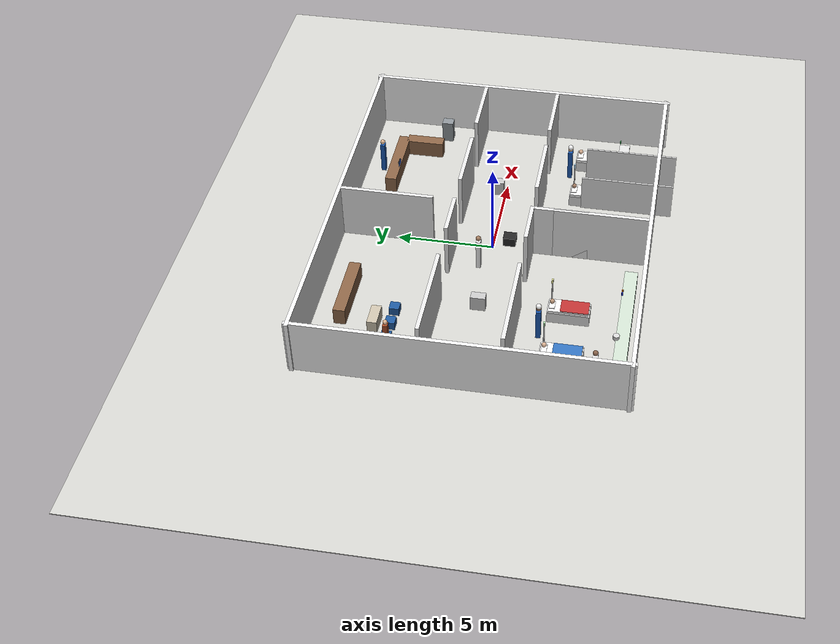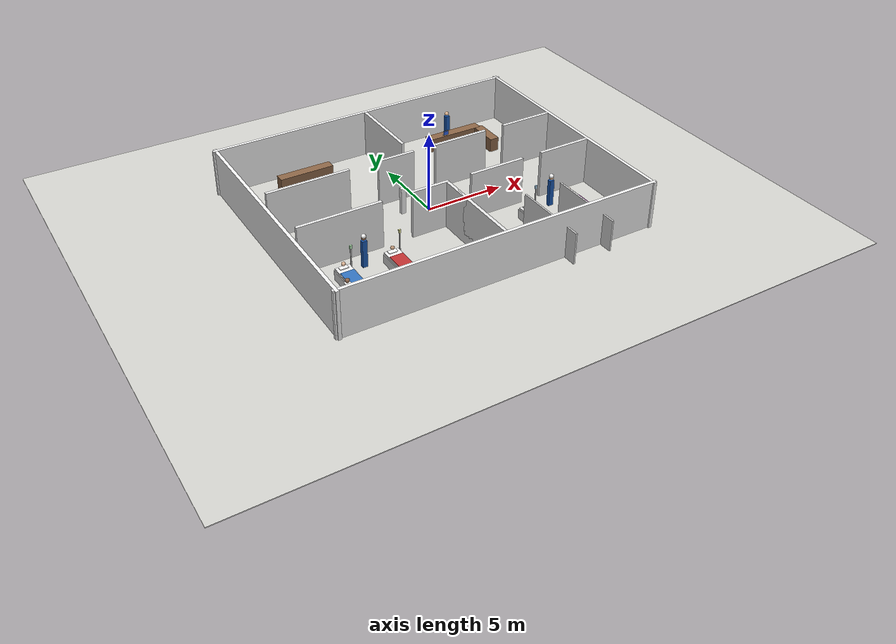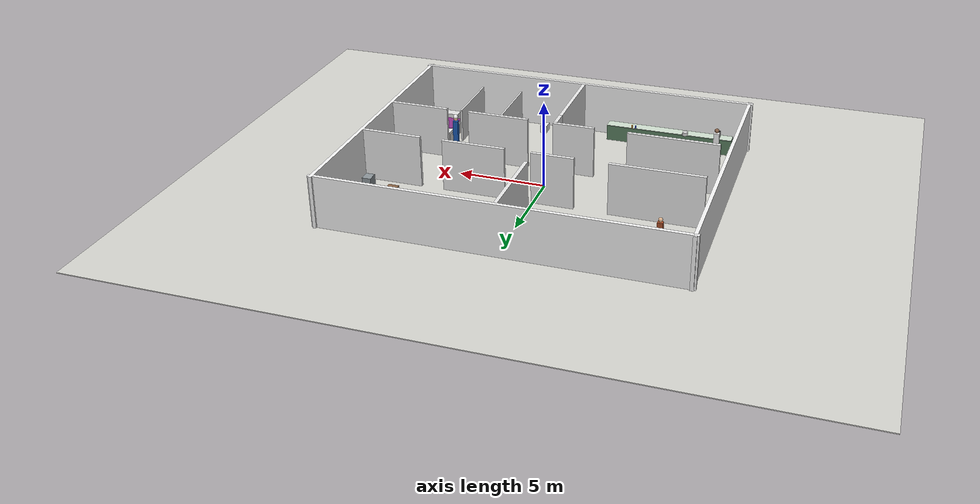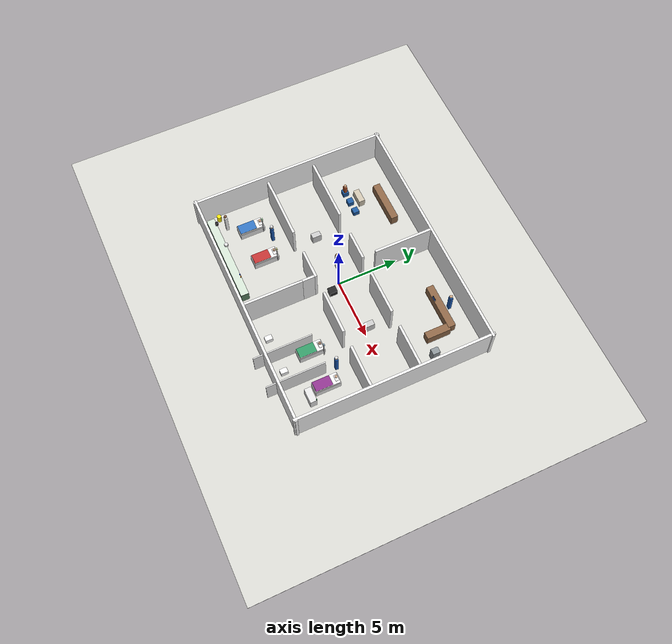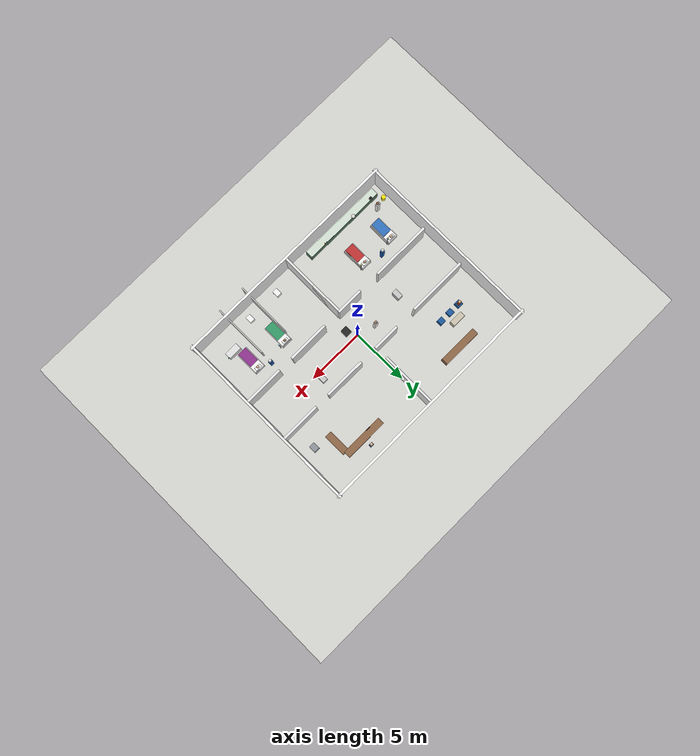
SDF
<?xml version="1.0"?>
<sdf version="1.8">
  <world name="hospital">

    <physics name="1ms" type="ignored">
      <max_step_size>0.001</max_step_size>
      <real_time_factor>1.0</real_time_factor>
    </physics>

    <plugin filename="gz-sim-physics-system"       name="gz::sim::systems::Physics"/>
    <plugin filename="gz-sim-user-commands-system" name="gz::sim::systems::UserCommands"/>
    <plugin filename="gz-sim-scene-broadcaster-system" name="gz::sim::systems::SceneBroadcaster"/>
    <plugin filename="gz-sim-sensors-system"       name="gz::sim::systems::Sensors">
      <render_engine>ogre2</render_engine>
    </plugin>
    <plugin filename="gz-sim-contact-system" name="gz::sim::systems::Contact"/>

    <light name="overhead_main" type="directional">
      <cast_shadows>true</cast_shadows>
      <pose>0 0 10 0 0 0</pose>
      <diffuse>0.95 0.95 0.98 1</diffuse>
      <specular>0.3 0.3 0.3 1</specular>
      <direction>-0.2 0.2 -1</direction>
      <attenuation><range>1000</range><constant>0.9</constant>
        <linear>0.01</linear><quadratic>0.001</quadratic></attenuation>
    </light>
    <light name="fill" type="directional">
      <pose>0 0 8 0 0 0</pose>
      <diffuse>0.5 0.5 0.55 1</diffuse>
      <specular>0.1 0.1 0.1 1</specular>
      <direction>0.3 -0.2 -1</direction>
      <cast_shadows>false</cast_shadows>
    </light>

    <!-- FLOOR -->
    <model name="floor"><static>true</static>
      <pose>0 0 -0.025 0 0 0</pose>
      <link name="link">
        <collision name="c">
          <geometry><box><size>40 32 0.05</size></box></geometry>
          <surface>
            <friction><ode><mu>1.0</mu><mu2>1.0</mu2></ode></friction>
            <contact><ode><kp>1000000.0</kp><kd>1.0</kd></ode></contact>
          </surface>
        </collision>
        <visual name="v">
          <geometry><box><size>40 32 0.05</size></box></geometry>
          <material><ambient>0.83 0.83 0.81 1</ambient><diffuse>0.83 0.83 0.81 1</diffuse></material>
        </visual>
      </link>
    </model>

    <!-- OUTER WALLS -->
    <model name="wall_north"><static>true</static><pose>0 8 1.5 0 0 0</pose>
      <link name="l"><collision name="c"><geometry><box><size>20.4 0.2 3.0</size></box></geometry></collision>
      <visual name="v"><geometry><box><size>20.4 0.2 3.0</size></box></geometry>
      <material><ambient>0.96 0.96 0.96 1</ambient><diffuse>0.96 0.96 0.96 1</diffuse></material></visual></link></model>

    <model name="wall_south"><static>true</static><pose>0 -8 1.5 0 0 0</pose>
      <link name="l"><collision name="c"><geometry><box><size>20.4 0.2 3.0</size></box></geometry></collision>
      <visual name="v"><geometry><box><size>20.4 0.2 3.0</size></box></geometry>
      <material><ambient>0.96 0.96 0.96 1</ambient><diffuse>0.96 0.96 0.96 1</diffuse></material></visual></link></model>

    <model name="wall_west"><static>true</static><pose>-10 0 1.5 0 0 0</pose>
      <link name="l"><collision name="c"><geometry><box><size>0.2 16.4 3.0</size></box></geometry></collision>
      <visual name="v"><geometry><box><size>0.2 16.4 3.0</size></box></geometry>
      <material><ambient>0.96 0.96 0.96 1</ambient><diffuse>0.96 0.96 0.96 1</diffuse></material></visual></link></model>

    <model name="wall_east"><static>true</static><pose>10 0 1.5 0 0 0</pose>
      <link name="l"><collision name="c"><geometry><box><size>0.2 16.4 3.0</size></box></geometry></collision>
      <visual name="v"><geometry><box><size>0.2 16.4 3.0</size></box></geometry>
      <material><ambient>0.96 0.96 0.96 1</ambient><diffuse>0.96 0.96 0.96 1</diffuse></material></visual></link></model>

    <!-- NORTH CORRIDOR WALL (Y=+2) with two doorway gaps -->
    <model name="ncw1"><static>true</static><pose>-6.8 2.0 1.5 0 0 0</pose>
      <link name="l"><collision name="c"><geometry><box><size>5.2 0.2 3.0</size></box></geometry></collision>
      <visual name="v"><geometry><box><size>5.2 0.2 3.0</size></box></geometry>
      <material><ambient>0.91 0.91 0.91 1</ambient><diffuse>0.91 0.91 0.91 1</diffuse></material></visual></link></model>
    <model name="ncw2"><static>true</static><pose>-1.1 2.0 1.5 0 0 0</pose>
      <link name="l"><collision name="c"><geometry><box><size>2.4 0.2 3.0</size></box></geometry></collision>
      <visual name="v"><geometry><box><size>2.4 0.2 3.0</size></box></geometry>
      <material><ambient>0.91 0.91 0.91 1</ambient><diffuse>0.91 0.91 0.91 1</diffuse></material></visual></link></model>
    <model name="ncw3"><static>true</static><pose>3.4 2.0 1.5 0 0 0</pose>
      <link name="l"><collision name="c"><geometry><box><size>3.6 0.2 3.0</size></box></geometry></collision>
      <visual name="v"><geometry><box><size>3.6 0.2 3.0</size></box></geometry>
      <material><ambient>0.91 0.91 0.91 1</ambient><diffuse>0.91 0.91 0.91 1</diffuse></material></visual></link></model>
    <model name="ncw4"><static>true</static><pose>8.2 2.0 1.5 0 0 0</pose>
      <link name="l"><collision name="c"><geometry><box><size>3.4 0.2 3.0</size></box></geometry></collision>
      <visual name="v"><geometry><box><size>3.4 0.2 3.0</size></box></geometry>
      <material><ambient>0.91 0.91 0.91 1</ambient><diffuse>0.91 0.91 0.91 1</diffuse></material></visual></link></model>

    <!-- SOUTH CORRIDOR WALL (Y=-2) with two doorway gaps -->
    <model name="scw1"><static>true</static><pose>-6.8 -2.0 1.5 0 0 0</pose>
      <link name="l"><collision name="c"><geometry><box><size>5.2 0.2 3.0</size></box></geometry></collision>
      <visual name="v"><geometry><box><size>5.2 0.2 3.0</size></box></geometry>
      <material><ambient>0.91 0.91 0.91 1</ambient><diffuse>0.91 0.91 0.91 1</diffuse></material></visual></link></model>
    <model name="scw2"><static>true</static><pose>-1.1 -2.0 1.5 0 0 0</pose>
      <link name="l"><collision name="c"><geometry><box><size>2.4 0.2 3.0</size></box></geometry></collision>
      <visual name="v"><geometry><box><size>2.4 0.2 3.0</size></box></geometry>
      <material><ambient>0.91 0.91 0.91 1</ambient><diffuse>0.91 0.91 0.91 1</diffuse></material></visual></link></model>
    <model name="scw3"><static>true</static><pose>3.4 -2.0 1.5 0 0 0</pose>
      <link name="l"><collision name="c"><geometry><box><size>3.6 0.2 3.0</size></box></geometry></collision>
      <visual name="v"><geometry><box><size>3.6 0.2 3.0</size></box></geometry>
      <material><ambient>0.91 0.91 0.91 1</ambient><diffuse>0.91 0.91 0.91 1</diffuse></material></visual></link></model>
    <model name="scw4"><static>true</static><pose>8.2 -2.0 1.5 0 0 0</pose>
      <link name="l"><collision name="c"><geometry><box><size>3.4 0.2 3.0</size></box></geometry></collision>
      <visual name="v"><geometry><box><size>3.4 0.2 3.0</size></box></geometry>
      <material><ambient>0.91 0.91 0.91 1</ambient><diffuse>0.91 0.91 0.91 1</diffuse></material></visual></link></model>

    <!-- CENTRE VERTICAL WALL (X=0) north and south halves -->
    <model name="cwall_n"><static>true</static><pose>0 5.5 1.5 0 0 0</pose>
      <link name="l"><collision name="c"><geometry><box><size>0.2 4.8 3.0</size></box></geometry></collision>
      <visual name="v"><geometry><box><size>0.2 4.8 3.0</size></box></geometry>
      <material><ambient>0.91 0.91 0.91 1</ambient><diffuse>0.91 0.91 0.91 1</diffuse></material></visual></link></model>
    <model name="cwall_s"><static>true</static><pose>0 -5.5 1.5 0 0 0</pose>
      <link name="l"><collision name="c"><geometry><box><size>0.2 4.8 3.0</size></box></geometry></collision>
      <visual name="v"><geometry><box><size>0.2 4.8 3.0</size></box></geometry>
      <material><ambient>0.91 0.91 0.91 1</ambient><diffuse>0.91 0.91 0.91 1</diffuse></material></visual></link></model>
    <model name="ward_div"><static>true</static><pose>0 -3.5 1.5 0 0 0</pose>
      <link name="l"><collision name="c"><geometry><box><size>0.2 2.8 3.0</size></box></geometry></collision>
      <visual name="v"><geometry><box><size>0.2 2.8 3.0</size></box></geometry>
      <material><ambient>0.91 0.91 0.91 1</ambient><diffuse>0.91 0.91 0.91 1</diffuse></material></visual></link></model>

    <!-- ═══ ENTRANCE LOBBY (west, north of corridor) ═══ -->
    <model name="info_counter"><static>true</static><pose>-5.0 6.5 0.45 0 0 0</pose>
      <link name="l"><collision name="c"><geometry><box><size>3.5 0.6 0.9</size></box></geometry></collision>
      <visual name="v"><geometry><box><size>3.5 0.6 0.9</size></box></geometry>
      <material><ambient>0.55 0.40 0.28 1</ambient><diffuse>0.55 0.40 0.28 1</diffuse></material></visual></link></model>
    <model name="wait_chair_a"><static>true</static><pose>-7.5 4.0 0.22 0 0 0</pose>
      <link name="l"><collision name="c"><geometry><box><size>0.5 0.5 0.44</size></box></geometry></collision>
      <visual name="v"><geometry><box><size>0.5 0.5 0.44</size></box></geometry>
      <material><ambient>0.12 0.35 0.62 1</ambient><diffuse>0.12 0.35 0.62 1</diffuse></material></visual></link></model>
    <model name="wait_chair_b"><static>true</static><pose>-6.5 4.0 0.22 0 0 0</pose>
      <link name="l"><collision name="c"><geometry><box><size>0.5 0.5 0.44</size></box></geometry></collision>
      <visual name="v"><geometry><box><size>0.5 0.5 0.44</size></box></geometry>
      <material><ambient>0.12 0.35 0.62 1</ambient><diffuse>0.12 0.35 0.62 1</diffuse></material></visual></link></model>
    <model name="wait_chair_c"><static>true</static><pose>-5.5 4.0 0.22 0 0 0</pose>
      <link name="l"><collision name="c"><geometry><box><size>0.5 0.5 0.44</size></box></geometry></collision>
      <visual name="v"><geometry><box><size>0.5 0.5 0.44</size></box></geometry>
      <material><ambient>0.12 0.35 0.62 1</ambient><diffuse>0.12 0.35 0.62 1</diffuse></material></visual></link></model>
    <model name="wait_table"><static>true</static><pose>-6.5 4.8 0.35 0 0 0</pose>
      <link name="l"><collision name="c"><geometry><box><size>1.2 0.5 0.70</size></box></geometry></collision>
      <visual name="v"><geometry><box><size>1.2 0.5 0.70</size></box></geometry>
      <material><ambient>0.80 0.76 0.68 1</ambient><diffuse>0.80 0.76 0.68 1</diffuse></material></visual></link></model>

    <!-- ═══ RECEPTION (east, north of corridor) ═══ -->
    <model name="recept_desk"><static>true</static><pose>5.5 6.2 0.45 0 0 0</pose>
      <link name="l"><collision name="c"><geometry><box><size>3.8 0.6 0.9</size></box></geometry></collision>
      <visual name="v"><geometry><box><size>3.8 0.6 0.9</size></box></geometry>
      <material><ambient>0.55 0.40 0.28 1</ambient><diffuse>0.55 0.40 0.28 1</diffuse></material></visual></link></model>
    <model name="recept_side"><static>true</static><pose>7.3 5.0 0.45 0 0 0</pose>
      <link name="l"><collision name="c"><geometry><box><size>0.6 2.0 0.9</size></box></geometry></collision>
      <visual name="v"><geometry><box><size>0.6 2.0 0.9</size></box></geometry>
      <material><ambient>0.55 0.40 0.28 1</ambient><diffuse>0.55 0.40 0.28 1</diffuse></material></visual></link></model>
    <model name="recept_monitor"><static>true</static><pose>4.8 5.95 1.1 0 0 0</pose>
      <link name="l"><collision name="c"><geometry><box><size>0.4 0.05 0.3</size></box></geometry></collision>
      <visual name="v"><geometry><box><size>0.4 0.05 0.3</size></box></geometry>
      <material><ambient>0.08 0.08 0.08 1</ambient><diffuse>0.08 0.08 0.08 1</diffuse></material></visual></link></model>
    <model name="recept_screen"><static>true</static><pose>4.8 5.92 1.1 0 0 0</pose>
      <link name="l"><collision name="c"><geometry><box><size>0.36 0.01 0.26</size></box></geometry></collision>
      <visual name="v"><geometry><box><size>0.36 0.01 0.26</size></box></geometry>
      <material><ambient>0.2 0.4 0.9 1</ambient><diffuse>0.2 0.4 0.9 1</diffuse></material></visual></link></model>
    <model name="filing_cab"><static>true</static><pose>8.8 4.0 0.6 0 0 0</pose>
      <link name="l"><collision name="c"><geometry><box><size>0.5 0.6 1.2</size></box></geometry></collision>
      <visual name="v"><geometry><box><size>0.5 0.6 1.2</size></box></geometry>
      <material><ambient>0.55 0.58 0.60 1</ambient><diffuse>0.55 0.58 0.60 1</diffuse></material></visual></link></model>

    <!-- ═══ CORRIDOR furniture ═══ -->
    <model name="trolley_w"><static>true</static><pose>-4.5 0.0 0.4 0 0 0</pose>
      <link name="l"><collision name="c"><geometry><box><size>0.45 0.75 0.80</size></box></geometry></collision>
      <visual name="v"><geometry><box><size>0.45 0.75 0.80</size></box></geometry>
      <material><ambient>0.78 0.78 0.78 1</ambient><diffuse>0.78 0.78 0.78 1</diffuse></material></visual></link></model>
    <model name="trolley_e"><static>true</static><pose>4.5 0.5 0.4 0 0 0</pose>
      <link name="l"><collision name="c"><geometry><box><size>0.45 0.75 0.80</size></box></geometry></collision>
      <visual name="v"><geometry><box><size>0.45 0.75 0.80</size></box></geometry>
      <material><ambient>0.78 0.78 0.78 1</ambient><diffuse>0.78 0.78 0.78 1</diffuse></material></visual></link></model>
    <model name="wheelchair"><static>true</static><pose>0.5 -0.8 0.25 0 0 0</pose>
      <link name="l"><collision name="c"><geometry><box><size>0.55 0.65 0.50</size></box></geometry></collision>
      <visual name="v"><geometry><box><size>0.55 0.65 0.50</size></box></geometry>
      <material><ambient>0.15 0.15 0.15 1</ambient><diffuse>0.15 0.15 0.15 1</diffuse></material></visual></link></model>

    <!-- ═══ WARD A — beds with patients ═══ -->
    <model name="bed_a1"><static>true</static><pose>-7.5 -4.5 0.3 0 0 0</pose>
      <link name="l"><collision name="c"><geometry><box><size>0.95 2.1 0.60</size></box></geometry></collision>
      <visual name="frame"><geometry><box><size>0.95 2.1 0.60</size></box></geometry>
      <material><ambient>0.88 0.88 0.88 1</ambient><diffuse>0.88 0.88 0.88 1</diffuse></material></visual>
      <visual name="mattress"><pose>0 0 0.36 0 0 0</pose><geometry><box><size>0.88 2.0 0.12</size></box></geometry>
      <material><ambient>0.96 0.96 0.96 1</ambient><diffuse>0.96 0.96 0.96 1</diffuse></material></visual>
      <visual name="blanket"><pose>0 -0.3 0.42 0 0 0</pose><geometry><box><size>0.82 1.40 0.08</size></box></geometry>
      <material><ambient>0.20 0.45 0.75 1</ambient><diffuse>0.20 0.45 0.75 1</diffuse></material></visual>
      <visual name="pillow"><pose>0 0.82 0.42 0 0 0</pose><geometry><box><size>0.52 0.28 0.09</size></box></geometry>
      <material><ambient>0.98 0.98 0.98 1</ambient><diffuse>0.98 0.98 0.98 1</diffuse></material></visual>
      </link></model>

    <!-- Patient A1 head on pillow (separate model — sphere on top of bed) -->
    <model name="pat_a1_head"><static>true</static><pose>-7.5 -3.68 0.98 0 0 0</pose>
      <link name="l"><collision name="c"><geometry><sphere><radius>0.12</radius></sphere></geometry></collision>
      <visual name="v"><geometry><sphere><radius>0.12</radius></sphere></geometry>
      <material><ambient>0.88 0.72 0.60 1</ambient><diffuse>0.88 0.72 0.60 1</diffuse></material></visual></link></model>

    <model name="iv_stand_a1"><static>true</static><pose>-7.0 -3.6 0.9 0 0 0</pose>
      <link name="l"><collision name="c"><geometry><box><size>0.06 0.06 1.8</size></box></geometry></collision>
      <visual name="pole"><geometry><box><size>0.06 0.06 1.8</size></box></geometry>
      <material><ambient>0.72 0.72 0.72 1</ambient><diffuse>0.72 0.72 0.72 1</diffuse></material></visual>
      <visual name="bag"><pose>0 0 0.95 0 0 0</pose><geometry><box><size>0.14 0.08 0.22</size></box></geometry>
      <material><ambient>0.70 0.90 0.70 1</ambient><diffuse>0.70 0.90 0.70 1</diffuse></material></visual>
      </link></model>

    <model name="bed_a2"><static>true</static><pose>-4.5 -4.5 0.3 0 0 0</pose>
      <link name="l"><collision name="c"><geometry><box><size>0.95 2.1 0.60</size></box></geometry></collision>
      <visual name="frame"><geometry><box><size>0.95 2.1 0.60</size></box></geometry>
      <material><ambient>0.88 0.88 0.88 1</ambient><diffuse>0.88 0.88 0.88 1</diffuse></material></visual>
      <visual name="mattress"><pose>0 0 0.36 0 0 0</pose><geometry><box><size>0.88 2.0 0.12</size></box></geometry>
      <material><ambient>0.96 0.96 0.96 1</ambient><diffuse>0.96 0.96 0.96 1</diffuse></material></visual>
      <visual name="blanket"><pose>0 -0.3 0.42 0 0 0</pose><geometry><box><size>0.82 1.40 0.08</size></box></geometry>
      <material><ambient>0.75 0.20 0.20 1</ambient><diffuse>0.75 0.20 0.20 1</diffuse></material></visual>
      <visual name="pillow"><pose>0 0.82 0.42 0 0 0</pose><geometry><box><size>0.52 0.28 0.09</size></box></geometry>
      <material><ambient>0.98 0.98 0.98 1</ambient><diffuse>0.98 0.98 0.98 1</diffuse></material></visual>
      </link></model>

    <model name="pat_a2_head"><static>true</static><pose>-4.5 -3.68 0.98 0 0 0</pose>
      <link name="l"><collision name="c"><geometry><sphere><radius>0.12</radius></sphere></geometry></collision>
      <visual name="v"><geometry><sphere><radius>0.12</radius></sphere></geometry>
      <material><ambient>0.75 0.60 0.48 1</ambient><diffuse>0.75 0.60 0.48 1</diffuse></material></visual></link></model>

    <model name="iv_stand_a2"><static>true</static><pose>-4.0 -3.6 0.9 0 0 0</pose>
      <link name="l"><collision name="c"><geometry><box><size>0.06 0.06 1.8</size></box></geometry></collision>
      <visual name="pole"><geometry><box><size>0.06 0.06 1.8</size></box></geometry>
      <material><ambient>0.72 0.72 0.72 1</ambient><diffuse>0.72 0.72 0.72 1</diffuse></material></visual>
      <visual name="bag"><pose>0 0 0.95 0 0 0</pose><geometry><box><size>0.14 0.08 0.22</size></box></geometry>
      <material><ambient>0.90 0.90 0.60 1</ambient><diffuse>0.90 0.90 0.60 1</diffuse></material></visual>
      </link></model>

    <!-- Nurse Ward A -->
    <model name="nurse_a"><static>true</static><pose>-6.0 -3.2 0.85 0 0 0</pose>
      <link name="l">
        <collision name="c"><geometry><box><size>0.30 0.24 1.70</size></box></geometry></collision>
        <visual name="body"><geometry><box><size>0.30 0.24 1.70</size></box></geometry>
          <material><ambient>0.10 0.35 0.70 1</ambient><diffuse>0.10 0.35 0.70 1</diffuse></material></visual>
        <visual name="head"><pose>0 0 1.00 0 0 0</pose><geometry><sphere><radius>0.13</radius></sphere></geometry>
          <material><ambient>0.55 0.40 0.30 1</ambient><diffuse>0.55 0.40 0.30 1</diffuse></material></visual>
        <visual name="cap"><pose>0 0 1.12 0 0 0</pose><geometry><sphere><radius>0.14</radius></sphere></geometry>
          <material><ambient>0.95 0.95 0.95 1</ambient><diffuse>0.95 0.95 0.95 1</diffuse></material></visual>
      </link></model>

    <!-- ═══ WARD B — beds with patients ═══ -->
    <model name="bed_b1"><static>true</static><pose>4.5 -4.5 0.3 0 0 0</pose>
      <link name="l"><collision name="c"><geometry><box><size>0.95 2.1 0.60</size></box></geometry></collision>
      <visual name="frame"><geometry><box><size>0.95 2.1 0.60</size></box></geometry>
      <material><ambient>0.88 0.88 0.88 1</ambient><diffuse>0.88 0.88 0.88 1</diffuse></material></visual>
      <visual name="mattress"><pose>0 0 0.36 0 0 0</pose><geometry><box><size>0.88 2.0 0.12</size></box></geometry>
      <material><ambient>0.96 0.96 0.96 1</ambient><diffuse>0.96 0.96 0.96 1</diffuse></material></visual>
      <visual name="blanket"><pose>0 -0.3 0.42 0 0 0</pose><geometry><box><size>0.82 1.40 0.08</size></box></geometry>
      <material><ambient>0.20 0.60 0.40 1</ambient><diffuse>0.20 0.60 0.40 1</diffuse></material></visual>
      <visual name="pillow"><pose>0 0.82 0.42 0 0 0</pose><geometry><box><size>0.52 0.28 0.09</size></box></geometry>
      <material><ambient>0.98 0.98 0.98 1</ambient><diffuse>0.98 0.98 0.98 1</diffuse></material></visual>
      </link></model>

    <model name="pat_b1_head"><static>true</static><pose>4.5 -3.68 0.98 0 0 0</pose>
      <link name="l"><collision name="c"><geometry><sphere><radius>0.12</radius></sphere></geometry></collision>
      <visual name="v"><geometry><sphere><radius>0.12</radius></sphere></geometry>
      <material><ambient>0.65 0.50 0.40 1</ambient><diffuse>0.65 0.50 0.40 1</diffuse></material></visual></link></model>

    <model name="iv_stand_b1"><static>true</static><pose>5.1 -3.6 0.9 0 0 0</pose>
      <link name="l"><collision name="c"><geometry><box><size>0.06 0.06 1.8</size></box></geometry></collision>
      <visual name="pole"><geometry><box><size>0.06 0.06 1.8</size></box></geometry>
      <material><ambient>0.72 0.72 0.72 1</ambient><diffuse>0.72 0.72 0.72 1</diffuse></material></visual>
      <visual name="bag"><pose>0 0 0.95 0 0 0</pose><geometry><box><size>0.14 0.08 0.22</size></box></geometry>
      <material><ambient>0.70 0.85 0.95 1</ambient><diffuse>0.70 0.85 0.95 1</diffuse></material></visual>
      </link></model>

    <model name="bed_b2"><static>true</static><pose>7.5 -4.5 0.3 0 0 0</pose>
      <link name="l"><collision name="c"><geometry><box><size>0.95 2.1 0.60</size></box></geometry></collision>
      <visual name="frame"><geometry><box><size>0.95 2.1 0.60</size></box></geometry>
      <material><ambient>0.88 0.88 0.88 1</ambient><diffuse>0.88 0.88 0.88 1</diffuse></material></visual>
      <visual name="mattress"><pose>0 0 0.36 0 0 0</pose><geometry><box><size>0.88 2.0 0.12</size></box></geometry>
      <material><ambient>0.96 0.96 0.96 1</ambient><diffuse>0.96 0.96 0.96 1</diffuse></material></visual>
      <visual name="blanket"><pose>0 -0.3 0.42 0 0 0</pose><geometry><box><size>0.82 1.40 0.08</size></box></geometry>
      <material><ambient>0.55 0.20 0.55 1</ambient><diffuse>0.55 0.20 0.55 1</diffuse></material></visual>
      <visual name="pillow"><pose>0 0.82 0.42 0 0 0</pose><geometry><box><size>0.52 0.28 0.09</size></box></geometry>
      <material><ambient>0.98 0.98 0.98 1</ambient><diffuse>0.98 0.98 0.98 1</diffuse></material></visual>
      </link></model>

    <model name="pat_b2_head"><static>true</static><pose>7.5 -3.68 0.98 0 0 0</pose>
      <link name="l"><collision name="c"><geometry><sphere><radius>0.12</radius></sphere></geometry></collision>
      <visual name="v"><geometry><sphere><radius>0.12</radius></sphere></geometry>
      <material><ambient>0.88 0.72 0.60 1</ambient><diffuse>0.88 0.72 0.60 1</diffuse></material></visual></link></model>

    <!-- Nurse Ward B -->
    <model name="nurse_b"><static>true</static><pose>6.5 -3.2 0.85 0 0 0</pose>
      <link name="l">
        <collision name="c"><geometry><box><size>0.30 0.24 1.70</size></box></geometry></collision>
        <visual name="body"><geometry><box><size>0.30 0.24 1.70</size></box></geometry>
          <material><ambient>0.10 0.35 0.70 1</ambient><diffuse>0.10 0.35 0.70 1</diffuse></material></visual>
        <visual name="head"><pose>0 0 1.00 0 0 0</pose><geometry><sphere><radius>0.13</radius></sphere></geometry>
          <material><ambient>0.88 0.72 0.58 1</ambient><diffuse>0.88 0.72 0.58 1</diffuse></material></visual>
        <visual name="cap"><pose>0 0 1.12 0 0 0</pose><geometry><sphere><radius>0.14</radius></sphere></geometry>
          <material><ambient>0.95 0.95 0.95 1</ambient><diffuse>0.95 0.95 0.95 1</diffuse></material></visual>
      </link></model>

    <!-- ═══ LABORATORY ═══ -->
    <model name="lab_bench"><static>true</static><pose>-5.5 -7.3 0.46 0 0 0</pose>
      <link name="l"><collision name="c"><geometry><box><size>7.5 0.65 0.92</size></box></geometry></collision>
      <visual name="base"><geometry><box><size>7.5 0.65 0.92</size></box></geometry>
      <material><ambient>0.35 0.50 0.38 1</ambient><diffuse>0.35 0.50 0.38 1</diffuse></material></visual>
      <visual name="top"><pose>0 0 0.48 0 0 0</pose><geometry><box><size>7.5 0.65 0.04</size></box></geometry>
      <material><ambient>0.82 0.88 0.82 1</ambient><diffuse>0.82 0.88 0.82 1</diffuse></material></visual>
      </link></model>
    <model name="microscope"><static>true</static><pose>-8.5 -7.0 1.27 0 0 0</pose>
      <link name="l"><collision name="c"><geometry><box><size>0.18 0.22 0.35</size></box></geometry></collision>
      <visual name="v"><geometry><box><size>0.18 0.22 0.35</size></box></geometry>
      <material><ambient>0.12 0.12 0.12 1</ambient><diffuse>0.12 0.12 0.12 1</diffuse></material></visual></link></model>
    <model name="centrifuge"><static>true</static><pose>-6.5 -7.0 1.04 0 0 0</pose>
      <link name="l"><collision name="c"><geometry><cylinder><radius>0.16</radius><length>0.22</length></cylinder></geometry></collision>
      <visual name="v"><geometry><cylinder><radius>0.16</radius><length>0.22</length></cylinder></geometry>
      <material><ambient>0.85 0.85 0.85 1</ambient><diffuse>0.85 0.85 0.85 1</diffuse></material></visual></link></model>
    <model name="bottle_blue"><static>true</static><pose>-3.5 -7.0 1.04 0 0 0</pose>
      <link name="l"><collision name="c"><geometry><cylinder><radius>0.04</radius><length>0.18</length></cylinder></geometry></collision>
      <visual name="v"><geometry><cylinder><radius>0.04</radius><length>0.18</length></cylinder></geometry>
      <material><ambient>0.10 0.20 0.80 1</ambient><diffuse>0.10 0.20 0.80 1</diffuse></material></visual></link></model>
    <model name="bottle_orange"><static>true</static><pose>-3.3 -7.0 1.04 0 0 0</pose>
      <link name="l"><collision name="c"><geometry><cylinder><radius>0.04</radius><length>0.18</length></cylinder></geometry></collision>
      <visual name="v"><geometry><cylinder><radius>0.04</radius><length>0.18</length></cylinder></geometry>
      <material><ambient>0.90 0.50 0.05 1</ambient><diffuse>0.90 0.50 0.05 1</diffuse></material></visual></link></model>
    <model name="bio_bin"><static>true</static><pose>-9.5 -6.5 0.3 0 0 0</pose>
      <link name="l"><collision name="c"><geometry><cylinder><radius>0.18</radius><length>0.60</length></cylinder></geometry></collision>
      <visual name="v"><geometry><cylinder><radius>0.18</radius><length>0.60</length></cylinder></geometry>
      <material><ambient>0.95 0.88 0.05 1</ambient><diffuse>0.95 0.88 0.05 1</diffuse></material></visual></link></model>
    <!-- Scientist in Lab -->
    <model name="scientist"><static>true</static><pose>-8.5 -6.2 0.85 0 0 0</pose>
      <link name="l">
        <collision name="c"><geometry><box><size>0.30 0.24 1.70</size></box></geometry></collision>
        <visual name="coat"><geometry><box><size>0.32 0.24 1.70</size></box></geometry>
          <material><ambient>0.95 0.95 0.95 1</ambient><diffuse>0.95 0.95 0.95 1</diffuse></material></visual>
        <visual name="head"><pose>0 0 1.00 0 0 0</pose><geometry><sphere><radius>0.13</radius></sphere></geometry>
          <material><ambient>0.55 0.40 0.30 1</ambient><diffuse>0.55 0.40 0.30 1</diffuse></material></visual>
      </link></model>

    <!-- ═══ TOILETS ═══ -->
    <model name="toilet_wall_a"><static>true</static><pose>4.0 -6.5 1.0 0 0 0</pose>
      <link name="l"><collision name="c"><geometry><box><size>0.1 4.8 2.0</size></box></geometry></collision>
      <visual name="v"><geometry><box><size>0.1 4.8 2.0</size></box></geometry>
      <material><ambient>0.88 0.88 0.88 1</ambient><diffuse>0.88 0.88 0.88 1</diffuse></material></visual></link></model>
    <model name="toilet_wall_b"><static>true</static><pose>6.5 -6.5 1.0 0 0 0</pose>
      <link name="l"><collision name="c"><geometry><box><size>0.1 4.8 2.0</size></box></geometry></collision>
      <visual name="v"><geometry><box><size>0.1 4.8 2.0</size></box></geometry>
      <material><ambient>0.88 0.88 0.88 1</ambient><diffuse>0.88 0.88 0.88 1</diffuse></material></visual></link></model>
    <model name="toilet_bowl_1"><static>true</static><pose>2.2 -7.0 0.22 0 0 0</pose>
      <link name="l"><collision name="c"><geometry><box><size>0.42 0.58 0.44</size></box></geometry></collision>
      <visual name="v"><geometry><box><size>0.42 0.58 0.44</size></box></geometry>
      <material><ambient>0.96 0.96 0.96 1</ambient><diffuse>0.96 0.96 0.96 1</diffuse></material></visual></link></model>
    <model name="toilet_bowl_2"><static>true</static><pose>5.2 -7.0 0.22 0 0 0</pose>
      <link name="l"><collision name="c"><geometry><box><size>0.42 0.58 0.44</size></box></geometry></collision>
      <visual name="v"><geometry><box><size>0.42 0.58 0.44</size></box></geometry>
      <material><ambient>0.96 0.96 0.96 1</ambient><diffuse>0.96 0.96 0.96 1</diffuse></material></visual></link></model>
    <model name="sink_unit"><static>true</static><pose>8.0 -6.0 0.45 0 0 0</pose>
      <link name="l"><collision name="c"><geometry><box><size>1.20 0.55 0.90</size></box></geometry></collision>
      <visual name="v"><geometry><box><size>1.20 0.55 0.90</size></box></geometry>
      <material><ambient>0.88 0.88 0.88 1</ambient><diffuse>0.88 0.88 0.88 1</diffuse></material></visual></link></model>
    <model name="soap_disp"><static>true</static><pose>8.6 -5.76 1.05 0 0 0</pose>
      <link name="l"><collision name="c"><geometry><box><size>0.10 0.06 0.18</size></box></geometry></collision>
      <visual name="v"><geometry><box><size>0.10 0.06 0.18</size></box></geometry>
      <material><ambient>0.20 0.55 0.30 1</ambient><diffuse>0.20 0.55 0.30 1</diffuse></material></visual></link></model>

    <!-- ═══ CORRIDOR HUMANS ═══ -->
    <model name="doctor_corridor"><static>true</static><pose>-1.5 0.5 0.85 0 0 0</pose>
      <link name="l">
        <collision name="c"><geometry><box><size>0.30 0.24 1.70</size></box></geometry></collision>
        <visual name="coat"><geometry><box><size>0.32 0.24 1.70</size></box></geometry>
          <material><ambient>0.95 0.95 0.95 1</ambient><diffuse>0.95 0.95 0.95 1</diffuse></material></visual>
        <visual name="scrubs"><pose>0 0 -0.55 0 0 0</pose><geometry><box><size>0.28 0.22 0.55</size></box></geometry>
          <material><ambient>0.10 0.35 0.70 1</ambient><diffuse>0.10 0.35 0.70 1</diffuse></material></visual>
        <visual name="head"><pose>0 0 1.00 0 0 0</pose><geometry><sphere><radius>0.13</radius></sphere></geometry>
          <material><ambient>0.65 0.50 0.38 1</ambient><diffuse>0.65 0.50 0.38 1</diffuse></material></visual>
      </link></model>

    <!-- ═══ LOBBY HUMANS ═══ -->
    <model name="nurse_reception"><static>true</static><pose>5.5 7.0 0.85 0 0 0</pose>
      <link name="l">
        <collision name="c"><geometry><box><size>0.30 0.24 1.70</size></box></geometry></collision>
        <visual name="body"><geometry><box><size>0.30 0.24 1.70</size></box></geometry>
          <material><ambient>0.10 0.35 0.70 1</ambient><diffuse>0.10 0.35 0.70 1</diffuse></material></visual>
        <visual name="head"><pose>0 0 1.00 0 0 0</pose><geometry><sphere><radius>0.13</radius></sphere></geometry>
          <material><ambient>0.88 0.72 0.58 1</ambient><diffuse>0.88 0.72 0.58 1</diffuse></material></visual>
      </link></model>
    <model name="visitor_lobby"><static>true</static><pose>-7.5 4.0 0.66 0 0 0</pose>
      <link name="l">
        <collision name="c"><geometry><box><size>0.30 0.24 0.88</size></box></geometry></collision>
        <visual name="body"><geometry><box><size>0.30 0.24 0.88</size></box></geometry>
          <material><ambient>0.65 0.30 0.15 1</ambient><diffuse>0.65 0.30 0.15 1</diffuse></material></visual>
        <visual name="head"><pose>0 0 0.58 0 0 0</pose><geometry><sphere><radius>0.12</radius></sphere></geometry>
          <material><ambient>0.88 0.72 0.58 1</ambient><diffuse>0.88 0.72 0.58 1</diffuse></material></visual>
      </link></model>

  </world>
</sdf>
